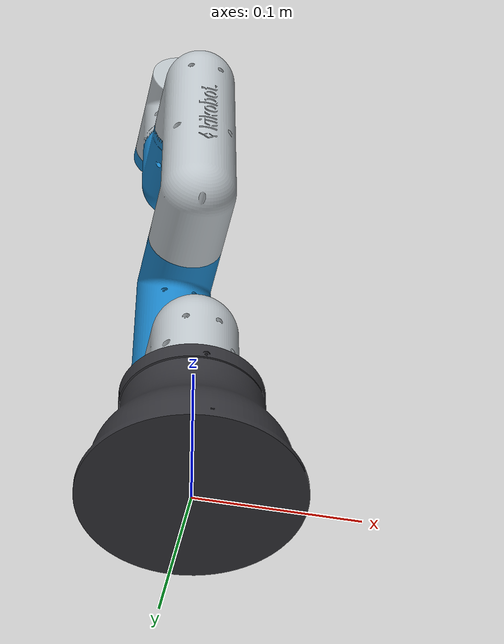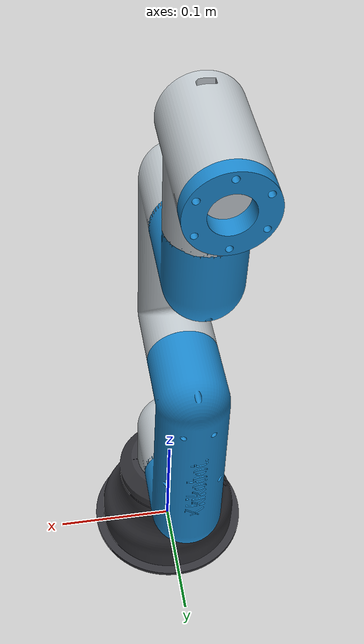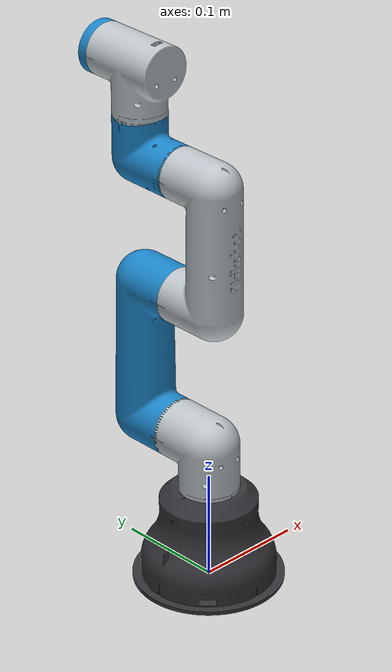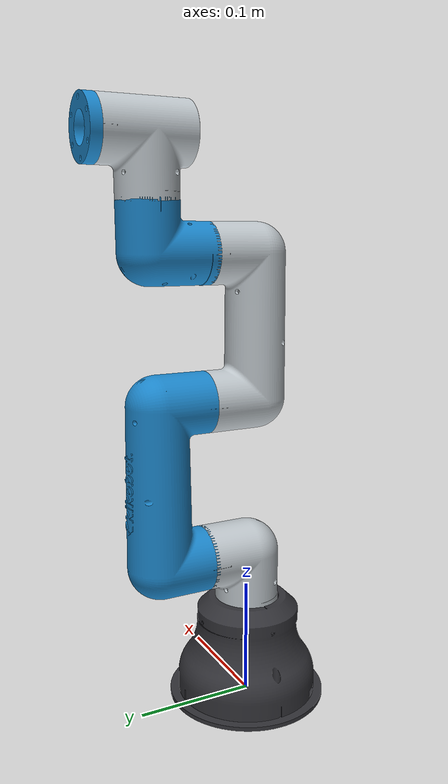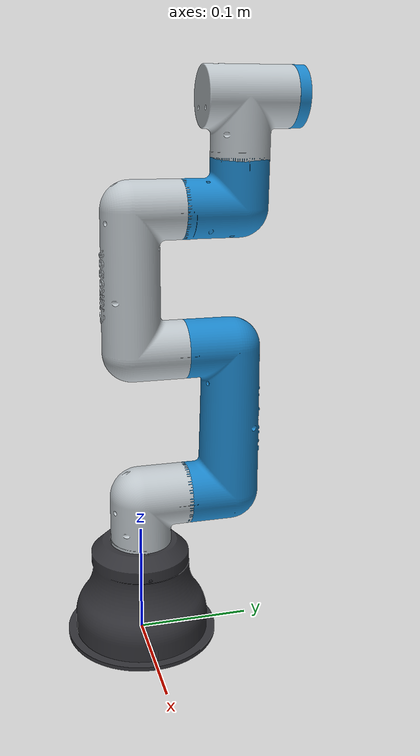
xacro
<robot name="robo_arm">
  <link name="world" />
  <material name="ur_accent">
    <color rgba="0.11 0.53 0.80 1.0" />
  </material>
  <material name="ur_light">
    <color rgba="0.75 0.78 0.80 1.0" />
  </material>
  <material name="ur_dark">
    <color rgba="0.20 0.20 0.22 1.0" />
  </material>
  <link name="base_link" />
  <joint name="world_to_base_link" type="fixed">
    <parent link="world" />
    <child link="base_link" />
    <origin xyz="0 0 0" rpy="0 0 0" />    <ros2_control name="KikobotSystem" type="system">
      <hardware>
        <plugin>gz_ros2_control/GazeboSimSystem</plugin>
      </hardware>
      <joint name="...">...</joint>
      ...
    </ros2_control>    <ros2_control name="KikobotSystem" type="system">
      <hardware>
        <plugin>gz_ros2_control/GazeboSimSystem</plugin>
      </hardware>
      <joint name="...">...</joint>
      ...
    </ros2_control>
  </joint>
  <joint name="base_link_to_Base" type="fixed">
    <parent link="base_link" />
    <child link="Base" />
    <origin xyz="0 0 0" rpy="0 0 0" />
  </joint>
  <link name="Base">
    <inertial>
      <origin xyz="0.0 0.0 0.0" rpy="0.0 0.0 0.0" />
      <mass value="5.0" />
      <inertia ixx="0.05" iyy="0.05" izz="0.05" ixy="0.0" iyz="0.0" ixz="0.0" />
    </inertial>
    <visual name="Base_visual">
      <origin xyz="0.0 0.0 0.0" rpy="1.5707963267948966 0.0 0.0" />
      <geometry>
        <mesh filename="file://$(find arm_description)/urdf/meshes/Base.stl" scale="0.001 0.001 0.001" />
      </geometry>
      <material name="ur_dark" />
    </visual>
    <collision name="Base_collision">
      <origin xyz="0.0 0.0 0.0" rpy="1.5707963267948966 0.0 0.0" />
      <geometry>
        <mesh filename="file://$(find arm_description)/urdf/meshes/Base.stl" scale="0.001 0.001 0.001" />
      </geometry>
    </collision>
  </link>
  <link name="Arm-1">
    <inertial>
      <origin xyz="-3.6304707242452993e-07 0.010665014372753847 0.040245339023033594" rpy="0.0 -0.0 0.0" />
      <mass value="1.0687641914182047" />
      <inertia ixx="0.0006704983115528758" iyy="0.0006302195772532951" izz="0.00047579424085602586" ixy="-1.4787025792949149e-08" iyz="-8.8277299021493e-05" ixz="8.532466355455287e-10" />
    </inertial>
    <visual name="Arm-1_visual">
      <origin xyz="-2.8416335229319856e-10 -2.2237225545673756e-09 -0.08525000477588429" rpy="1.5707963267948957 -3.633789175993528e-17 -1.5707963267948968" />
      <geometry>
        <mesh filename="file://$(find arm_description)/urdf/meshes/Arm-1.stl" scale="0.001 0.001 0.001" />
      </geometry>
      <material name="ur_light" />
    </visual>
    <collision name="Arm-1_collision">
      <origin xyz="-2.8416335229319856e-10 -2.2237225545673756e-09 -0.08525000477588429" rpy="1.5707963267948957 -3.633789175993528e-17 -1.5707963267948968" />
      <geometry>
        <mesh filename="file://$(find arm_description)/urdf/meshes/Arm-1.stl" scale="0.001 0.001 0.001" />
      </geometry>
    </collision>
  </link>
  <link name="Arm-2">
    <inertial>
      <origin xyz="-0.027291010656999373 -0.06388820650531735 -1.641718291026939e-06" rpy="-8.273537535917836e-95 -0.0 0.0" />
      <mass value="2.5174323442199595" />
      <inertia ixx="0.00827768866501688" iyy="0.0010318713526725736" izz="0.008358676284779695" ixy="2.0057600796929975e-06" iyz="-3.228897552142503e-08" ixz="-1.5244081456523742e-07" />
    </inertial>
    <visual name="Arm-2_visual">
      <origin xyz="0.006000002223722634 4.77588471881063e-09 -2.841633539585331e-10" rpy="-3.141592653589793 1.5707963267948957 0" />
      <geometry>
        <mesh filename="file://$(find arm_description)/urdf/meshes/Arm-2.stl" scale="0.001 0.001 0.001" />
      </geometry>
      <material name="ur_accent" />
    </visual>
    <collision name="Arm-2_collision">
      <origin xyz="0.006000002223722634 4.77588471881063e-09 -2.841633539585331e-10" rpy="-3.141592653589793 1.5707963267948957 0" />
      <geometry>
        <mesh filename="file://$(find arm_description)/urdf/meshes/Arm-2.stl" scale="0.001 0.001 0.001" />
      </geometry>
    </collision>
  </link>
  <link name="Arm-3">
    <inertial>
      <origin xyz="1.8543469611724262e-05 -0.057005310441065514 -0.03247369693935606" rpy="0.0 -0.0 0.0" />
      <mass value="2.151814339999089" />
      <inertia ixx="0.005888540515035262" iyy="0.0008708559635928294" izz="0.0057263162332367445" ixy="-6.593336986642092e-07" iyz="-4.838011570502867e-06" ixz="3.4690652990595286e-07" />
    </inertial>
    <visual name="Arm-3_visual">
      <origin xyz="-2.8416321629087804e-10 4.77588471881063e-09 -2.22372277924876e-09" rpy="-3.1415926535897913 9.940834058912084e-17 1.1696762940351957e-15" />
      <geometry>
        <mesh filename="file://$(find arm_description)/urdf/meshes/Arm-3.stl" scale="0.001 0.001 0.001" />
      </geometry>
      <material name="ur_light" />
    </visual>
    <collision name="Arm-3_collision">
      <origin xyz="-2.8416321629087804e-10 4.77588471881063e-09 -2.22372277924876e-09" rpy="-3.1415926535897913 9.940834058912084e-17 1.1696762940351957e-15" />
      <geometry>
        <mesh filename="file://$(find arm_description)/urdf/meshes/Arm-3.stl" scale="0.001 0.001 0.001" />
      </geometry>
    </collision>
  </link>
  <link name="Arm-4">
    <inertial>
      <origin xyz="-8.052563208113539e-09 -0.011556756628656828 0.03920598399088505" rpy="0.0 -0.0 1.8991135491519597e-65" />
      <mass value="0.8426528791869017" />
      <inertia ixx="0.00048347311744847965" iyy="0.00043703135637857254" izz="0.0003223678317791079" ixy="5.704951159916927e-12" iyz="6.865614772375711e-05" ixz="2.2478942401330405e-10" />
    </inertial>
    <visual name="Arm-4_visual">
      <origin xyz="-2.841630741823309e-10 4.77588471881063e-09 -0.08820000222372298" rpy="1.5707963267948968 8.582316144306066e-18 1.5707963267948977" />
      <geometry>
        <mesh filename="file://$(find arm_description)/urdf/meshes/Arm-4.stl" scale="0.001 0.001 0.001" />
      </geometry>
      <material name="ur_accent" />
    </visual>
    <collision name="Arm-4_collision">
      <origin xyz="-2.841630741823309e-10 4.77588471881063e-09 -0.08820000222372298" rpy="1.5707963267948968 8.582316144306066e-18 1.5707963267948977" />
      <geometry>
        <mesh filename="file://$(find arm_description)/urdf/meshes/Arm-4.stl" scale="0.001 0.001 0.001" />
      </geometry>
    </collision>
  </link>
  <link name="Arm-5">
    <inertial>
      <origin xyz="-0.008913001864035071 0.03992149604931242 -1.6722706487420914e-07" rpy="0.0 -0.0 0.0" />
      <mass value="0.9000824732764201" />
      <inertia ixx="0.00047618595149007126" iyy="0.00043166919952895236" izz="0.0005977314701192393" ixy="4.46145660282643e-05" iyz="4.9214216731822275e-09" ixz="4.844480959961849e-09" />
    </inertial>
    <visual name="Arm-5_visual">
      <origin xyz="2.2237231434019124e-09 -0.08820000477588473 2.841631274730361e-10" rpy="-1.1084439540778281e-15 -8.665525745064211e-18 1.117026270222134e-15" />
      <geometry>
        <mesh filename="file://$(find arm_description)/urdf/meshes/Arm-5.stl" scale="0.001 0.001 0.001" />
      </geometry>
      <material name="ur_light" />
    </visual>
    <collision name="Arm-5_collision">
      <origin xyz="2.2237231434019124e-09 -0.08820000477588473 2.841631274730361e-10" rpy="-1.1084439540778281e-15 -8.665525745064211e-18 1.117026270222134e-15" />
      <geometry>
        <mesh filename="file://$(find arm_description)/urdf/meshes/Arm-5.stl" scale="0.001 0.001 0.001" />
      </geometry>
    </collision>
  </link>
  <link name="End-Coupler-v1">
    <inertial>
      <origin xyz="-0.003390537594555969 -4.775884789864904e-09 2.841748064641436e-10" rpy="0.0 -0.0 0.0" />
      <mass value="0.1162770105689689" />
      <inertia ixx="4.070444495868353e-05" iyy="2.169606026503892e-05" izz="2.1696060266696016e-05" ixy="-1.734723475976807e-18" iyz="2.0328790734103208e-20" ixz="-2.591920818598159e-19" />
    </inertial>
    <visual name="End-Coupler-v1_visual">
      <origin xyz="-0.00919999777627698 -4.775884789864904e-09 2.8416296760092055e-10" rpy="-1.1084439540778271e-15 -8.665525745064204e-18 1.117026270222134e-15" />
      <geometry>
        <mesh filename="file://$(find arm_description)/urdf/meshes/End-Coupler-v1.stl" scale="0.001 0.001 0.001" />
      </geometry>
      <material name="ur_accent" />
    </visual>
    <collision name="End-Coupler-v1_collision">
      <origin xyz="-0.00919999777627698 -4.775884789864904e-09 2.8416296760092055e-10" rpy="-1.1084439540778271e-15 -8.665525745064204e-18 1.117026270222134e-15" />
      <geometry>
        <mesh filename="file://$(find arm_description)/urdf/meshes/End-Coupler-v1.stl" scale="0.001 0.001 0.001" />
      </geometry>
    </collision>
  </link>
  <joint name="Base_Revolute-1" type="revolute">
    <origin xyz="0.00065556 0.0 0.08255024" rpy="0.0 0.0 0.0" />
    <parent link="Base" />
    <child link="Arm-1" />
    <axis xyz="0.0 0.0 1.0" />
    <limit lower="-2.879793" upper="2.879793" effort="150.0" velocity="2.0" />
    <dynamics damping="0.8" friction="0.5" />
  </joint>
  <joint name="Arm-1_Revolute-2" type="revolute">
    <origin xyz="3.3306690738754695e-18 0.0417 0.049749999999999996" rpy="-1.5707963267948966 -2.775557561562912e-17 -1.5707963267948966" />
    <parent link="Arm-1" />
    <child link="Arm-2" />
    <axis xyz="1.0 8.531573731886488e-33 0.0" />
    <limit lower="-2.181662" upper="2.181662" effort="120.0" velocity="1.8" />
    <dynamics damping="0.6" friction="0.4" />
  </joint>
  <joint name="Arm-2_Revolute-3" type="revolute">
    <origin xyz="0.0029999999999999983 -0.133 0.0" rpy="1.9668971100548318e-31 -1.5707963267948966 0" />
    <parent link="Arm-2" />
    <child link="Arm-3" />
    <axis xyz="0.0 0.0 -1.0" />
    <limit lower="-2.443461" upper="2.443461" effort="80.0" velocity="2.5" />
    <dynamics damping="0.4" friction="0.3" />
  </joint>
  <joint name="Arm-3_Revolute-4" type="revolute">
    <origin xyz="0.0 -0.11599999999999998 -0.0030000000000000027" rpy="-1.9721522630525295e-31 -1.232595164407831e-32 1.4530830046144773e-33" />
    <parent link="Arm-3" />
    <child link="Arm-4" />
    <axis xyz="1.232595164407831e-32 -1.9721522630525295e-31 1.0" />
    <limit lower="-2.443461" upper="2.443461" effort="40.0" velocity="3.0" />
    <dynamics damping="0.3" friction="0.2" />
  </joint>
  <joint name="Arm-4_Revolute-5" type="revolute">
    <origin xyz="0.0 -0.0368 0.04880000000000001" rpy="-3.141592653589793 1.5707963267948966 0" />
    <parent link="Arm-4" />
    <child link="Arm-5" />
    <axis xyz="0.0 1.0 0.0" />
    <limit lower="-2.443461" upper="2.443461" effort="25.0" velocity="3.5" />
    <dynamics damping="0.2" friction="0.15" />
  </joint>
  <joint name="Arm-5_Revolute-6" type="revolute">
    <origin xyz="-0.04 0.048800000000000024 0.0" rpy="5.806664411703718e-66 -5.998855812705412e-34 9.67961990252435e-33" />
    <parent link="Arm-5" />
    <child link="End-Coupler-v1" />
    <axis xyz="-1.0 -9.679619902524347e-33 -0.0" />
    <limit lower="-3.054326" upper="3.054326" effort="15.0" velocity="4.0" />
    <dynamics damping="0.1" friction="0.1" />
  </joint>
  <ros2_control name="RobotSystem" type="system">
    <hardware>
      <plugin>gz_ros2_control/GazeboSimSystem</plugin>
    </hardware>
    <joint name="Base_Revolute-1">
      <command_interface name="position" />
      <state_interface name="position" />
      <state_interface name="velocity" />
      <state_interface name="effort" />
    </joint>
    <joint name="Arm-1_Revolute-2">
      <command_interface name="position" />
      <state_interface name="position" />
      <state_interface name="velocity" />
      <state_interface name="effort" />
    </joint>
    <joint name="Arm-2_Revolute-3">
      <command_interface name="position" />
      <state_interface name="position" />
      <state_interface name="velocity" />
      <state_interface name="effort" />
    </joint>
    <joint name="Arm-3_Revolute-4">
      <command_interface name="position" />
      <state_interface name="position" />
      <state_interface name="velocity" />
      <state_interface name="effort" />
    </joint>
    <joint name="Arm-4_Revolute-5">
      <command_interface name="position" />
      <state_interface name="position" />
      <state_interface name="velocity" />
      <state_interface name="effort" />
    </joint>
    <joint name="Arm-5_Revolute-6">
      <command_interface name="position" />
      <state_interface name="position" />
      <state_interface name="velocity" />
      <state_interface name="effort" />
    </joint>
  </ros2_control>
  <gazebo>
    <plugin filename="libgz_ros2_control-system.so" name="gz_ros2_control::GazeboSimROS2ControlPlugin">
      <parameters>$(find arm_controller)/config/arm_controllers.yaml</parameters>
    </plugin>
  </gazebo>
  <gazebo reference="Base">
    <gravity>false</gravity>
    <kinematic>true</kinematic>
  </gazebo>
</robot>
